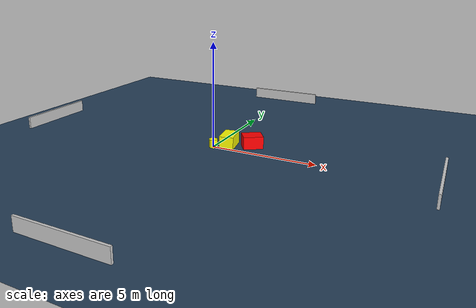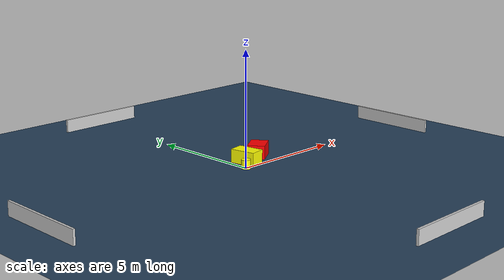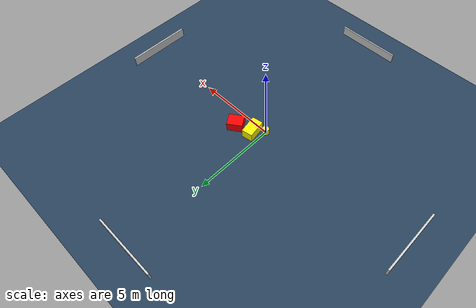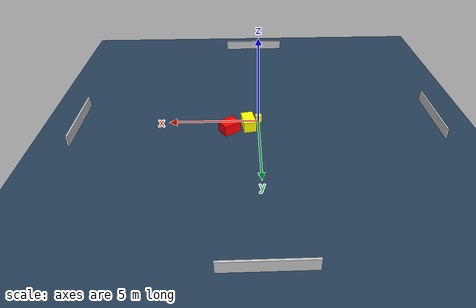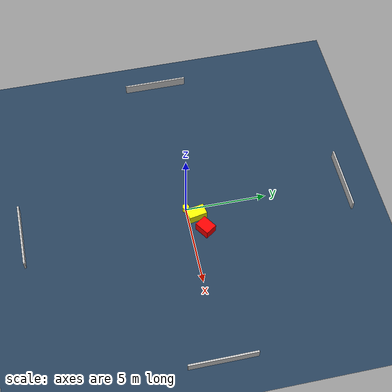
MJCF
<?xml version="1.0" ?>
<mujoco model="generated_environment">
  <option timestep="0.01" integrator="RK4" cone="elliptic"/>
  <default>
    <geom density="1"/>
  </default>
  <asset>
    <texture builtin="gradient" height="3072" name="skybox" rgb1="0.3 0.5 0.7" rgb2="0 0 0" type="skybox" width="512"/>
    <texture builtin="checker" height="300" name="groundplane" rgb1="0.2 0.3 0.4" rgb2="0.1 0.2 0.3" type="2d" width="300"/>
    <material name="groundplane" reflectance="0.2" texrepeat="5 5" texture="groundplane"/>
  </asset>
  <worldbody>
    <light dir="0 0 -1" directional="true" pos="0 0 1.5"/>
    <geom condim="3" friction="0.5 0.005 0.001" material="groundplane" name="floor" pos="0 0 0" size="0 0 0.05" type="plane"/>
    <body name="walls">
      <geom name="wall_1" condim="4" pos="-10.0 0.0 0.3" rgba="0.800000011920929 0.800000011920929 0.800000011920929 1.0" size="0.05 2.0 0.3" type="box"/>
      <geom name="wall_2" condim="4" pos="10.0 0.0 0.3" rgba="0.800000011920929 0.800000011920929 0.800000011920929 1.0" size="0.05 2.0 0.3" type="box"/>
      <geom name="wall_3" condim="4" pos="0.0 -10.0 0.3" rgba="0.800000011920929 0.800000011920929 0.800000011920929 1.0" size="2.0 0.05 0.3" type="box"/>
      <geom name="wall_4" condim="4" pos="0.0 10.0 0.3" rgba="0.800000011920929 0.800000011920929 0.800000011920929 1.0" size="2.0 0.05 0.3" type="box"/>
    </body>
    <body name="robot">
      <joint name="joint_x" type="slide" pos="0 0 0" axis="1 0 0"/>
      <joint name="joint_y" type="slide" pos="0 0 0" axis="0 1 0"/>
      <geom name="robot" type="cylinder" pos="0.0 0.0 0.2" size="0.2 0.2 0.0" mass="5.0" friction="1.0 0.005 0.0001" condim="4" rgba="1.0 1.0 0.0 1.0"/>
    </body>
    <body name="obstacle_1_movable">
      <geom name="obstacle_1_movable" condim="4" pos="0.576290163536741 0.5340160994548935 0.3" euler="0 0 100.24528528259547" friction="0.0 0.005 0.001" rgba="1.0 1.0 0.0 1.0" size="0.5681915727848973 0.33943075188293315 0.3" type="box" mass="0.1"/>
      <joint type="free"/>
    </body>
    <body name="obstacle_2_static">
      <geom name="obstacle_2_static" condim="4" pos="1.6180070446733448 0.8870623346774417 0.3" euler="0 0 123.75258553812544" friction="0.0 0.005 0.001" rgba="1.0 0.0 0.0 1.0" size="0.37841397731721155 0.4718042101093433 0.3" type="box"/>
    </body>
  </worldbody>
  <actuator>
    <motor name="actuator_x" joint="joint_x" gear="1" ctrlrange="-1 1"/>
    <motor name="actuator_y" joint="joint_y" gear="1" ctrlrange="-1 1"/>
  </actuator>
</mujoco>
